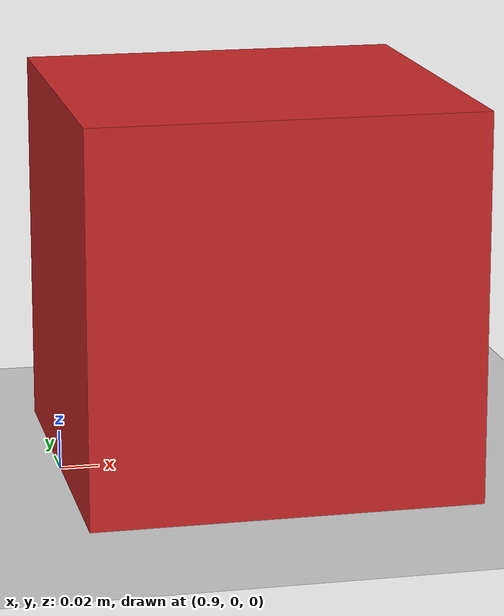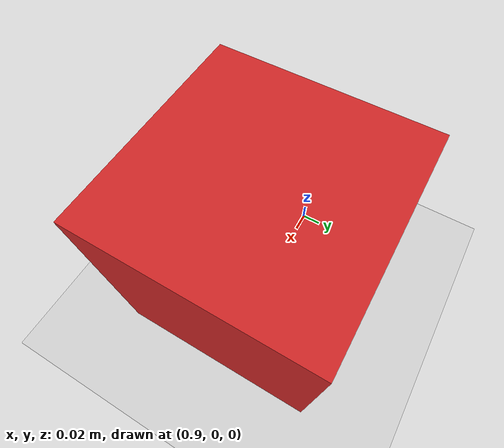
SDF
<?xml version="1.0" ?>
<sdf version="1.6">
  <world name="default">
    <include>
      <uri>model://ground_plane</uri>
    </include>
    <include>
      <uri>model://sun</uri>
    </include>
    <model  name="box">
      <pose>1 0 0.1 0 0 0</pose>
      <link name="box_link">
        <visual name="visual">
          <geometry>
            <box>
              <size>.2 .2 .2</size>
            </box>
          </geometry>
          <material>
            <script>
              <uri>file://media/materials/scripts/gazebo.material</uri>
              <name>Gazebo/Red</name>
            </script>
          </material>
          <plugin filename="libReflectancePlugin.so" name="reflectance_plugin">
            <reflectance_map>
              <uri>file://media/materials/textures</uri>
              <name>terrain.png</name>
            </reflectance_map>
          </plugin>
        </visual>
        <collision name="visual">
          <geometry>
            <box>
              <size>.2 .2 .2</size>
            </box>
          </geometry>
        </collision>
      </link>
    </model>

    <model name="camera_model">
      <pose>0 0 0 0 0 0</pose>
      <link name="my_link">
        <inertial>
          <inertia>
            <ixx>1</ixx>
            <ixy>0</ixy>
            <ixz>0</ixz>
            <iyy>1</iyy>
            <iyz>0</iyz>
            <izz>1</izz>
          </inertia>
          <mass>1.0</mass>
        </inertial>
        <collision name="collision">
          <geometry>
            <box>
              <size>1 1 1</size>
            </box>
          </geometry>
        </collision>
        <sensor name="camera" type="depth">
          <camera>
            <horizontal_fov>1.04719755</horizontal_fov>
            <image>
              <width>640</width>
              <height>480</height>
              <format>R8G8B8</format>
            </image>
            <clip>
              <near>0.1</near>
              <far>100</far>
            </clip>
            <save enabled='0'>
              <path>__default__</path>
            </save>
            <depth_camera>
              <output>points;reflectance</output>
            </depth_camera>
          </camera>
          <plugin filename="libDepthCameraPlugin.so" name="depth_camera_plugin" />
          <always_on>true</always_on>
          <update_rate>10.0</update_rate>
        </sensor>
      </link>
      <static>true</static>
    </model>

  </world>
</sdf>
